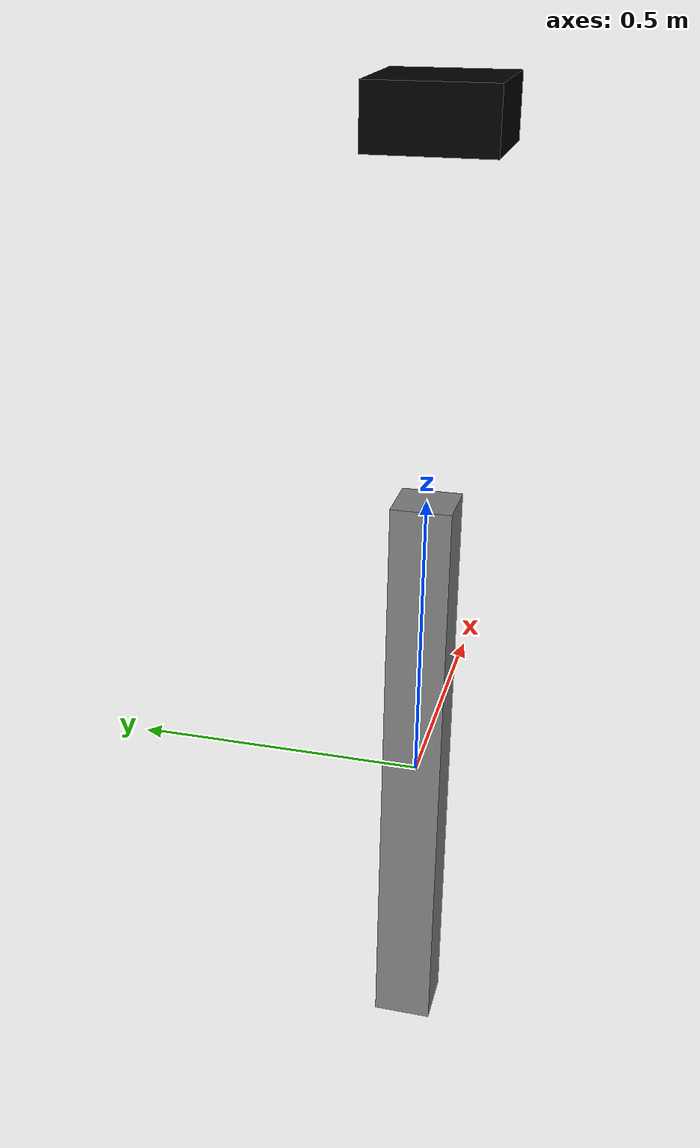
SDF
<?xml version="1.0" ?>
<sdf version="1.7">

<model name="camera_stand">

  <static>true</static>

  <!-- Stand -->
  <link name="stand_link">

    <!-- VISUAL -->
    <visual name="stand_visual">
      <geometry>
        <box>
          <size>0.1 0.1 1.0</size>
        </box>
      </geometry>

      <material>
        <ambient>0.3 0.3 0.3 1</ambient>
        <diffuse>0.5 0.5 0.5 1</diffuse>
      </material>
    </visual>

    <!-- COLLISION -->
    <collision name="stand_collision">
      <geometry>
        <box>
          <size>0.1 0.1 1.0</size>
        </box>
      </geometry>
    </collision>

  </link>

  <!-- Camera -->
  <link name="camera_link">

    <pose>0 0 1.1 0 0 0</pose>

    <!-- Camera Body -->
    <visual name="camera_visual">
      <geometry>
        <box>
          <size>0.2 0.2 0.1</size>
        </box>
      </geometry>

      <material>
        <ambient>0 0 0 1</ambient>
        <diffuse>0 0 0 1</diffuse>
      </material>
    </visual>

    <!-- CAMERA SENSOR -->
    <sensor name="camera_sensor" type="camera">

      <camera>

        <horizontal_fov>1.5707</horizontal_fov>

        <image>
          <width>640</width>
          <height>480</height>
          <format>R8G8B8</format>
        </image>

        <clip>
          <near>0.1</near>
          <far>100</far>
        </clip>

      </camera>

      <always_on>true</always_on>
      <update_rate>30</update_rate>
      <visualize>false</visualize>

      <!-- ROS2 CAMERA PLUGIN -->
      <plugin name="camera_controller"
              filename="libgazebo_ros_camera.so">

        <ros>
          <namespace>/camera</namespace>
        </ros>

        <camera_name>vision_camera</camera_name>

        <image_topic_name>image_raw</image_topic_name>

        <camera_info_topic_name>
          camera_info
        </camera_info_topic_name>

        <frame_name>camera_link</frame_name>

      </plugin>

    </sensor>

  </link>

</model>

</sdf>
